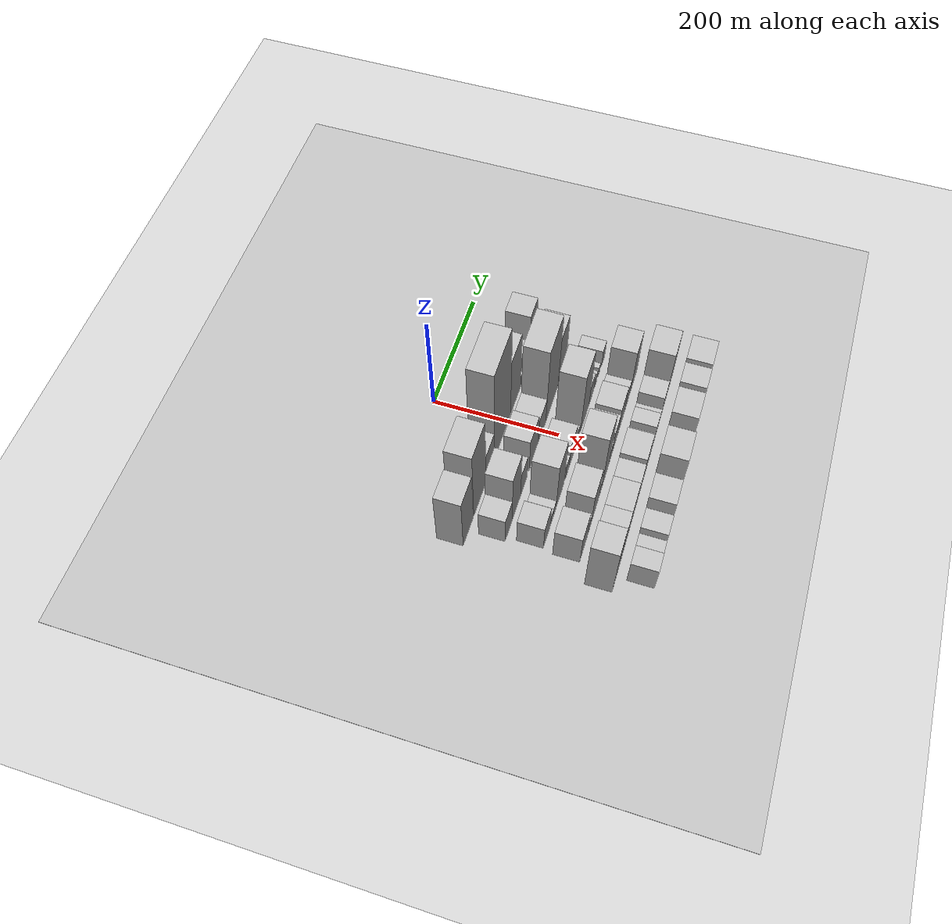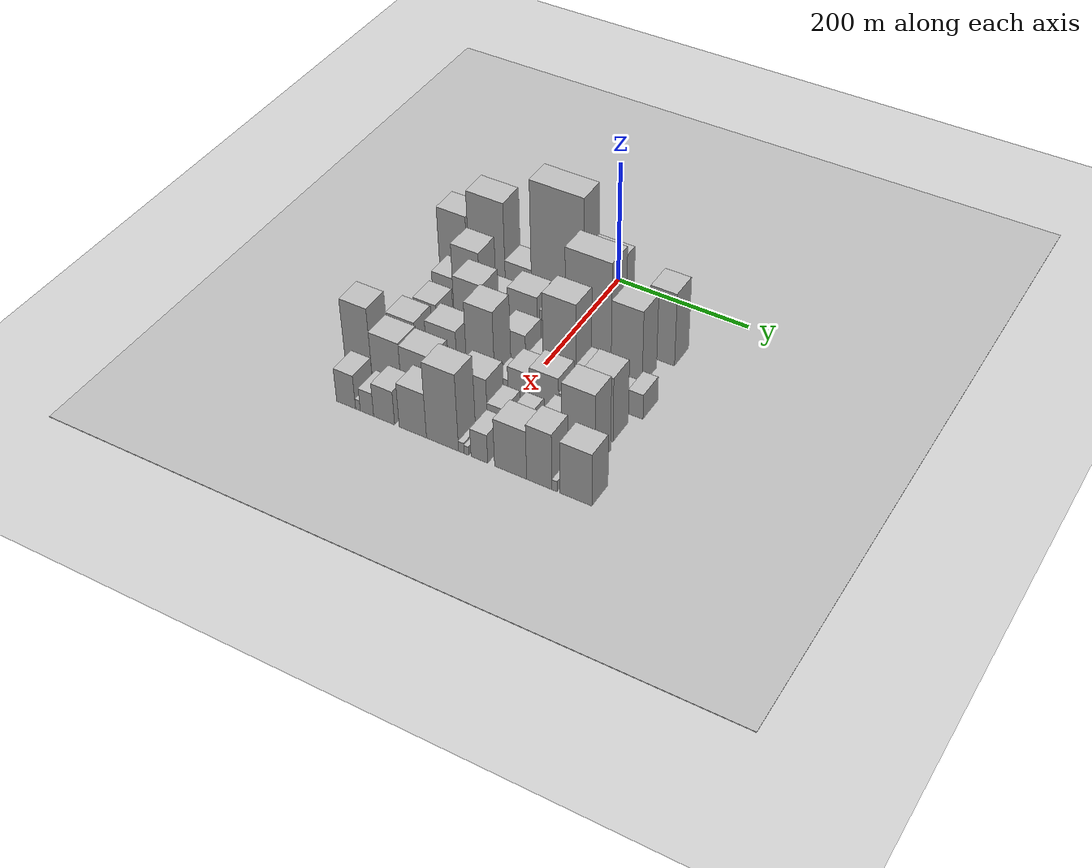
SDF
<sdf version="1.6">
 <world name="default">
  <include><name>ground_plane_1</name><uri>model://HANNAS_ground_plane</uri></include>
  <include>
   <name>ground_plane_2</name>
   <uri>model://HANNAS_ground_plane</uri>
   <pose>100 0 0  0 0 0</pose>
  </include>
  <model name="building_21">
   <static>1</static>
   <pose>100.0000 -193.4009 0 0.000000 0.000000 0.000000</pose>
   <link name="link">
    <pose>0 0 63.00 0 0 0</pose>
    <collision name="collision"><geometry><box><size>40.0000 45.8282 126.0000</size></box></geometry></collision>
    <visual name="visual">
     <cast_shadows>0</cast_shadows>
     <geometry><box><size>40.0000 45.8282 126.0000</size></box></geometry>
     <material>
      <script>
       <uri>model://HANNAS_wall/materials/scripts</uri>
       <uri>model://HANNAS_wall/materials/textures</uri>
       <name>vrc/HANNAS_wall</name>
      </script>
     </material>
    </visual>
   </link>
  </model>
  <model name="building_22">
   <static>1</static>
   <pose>100.0000 -138.6971 0 0.000000 0.000000 0.000000</pose>
   <link name="link">
    <pose>0 0 85.50 0 0 0</pose>
    <collision name="collision"><geometry><box><size>40.0000 57.5793 171.0000</size></box></geometry></collision>
    <visual name="visual">
     <cast_shadows>0</cast_shadows>
     <geometry><box><size>40.0000 57.5793 171.0000</size></box></geometry>
     <material>
      <script>
       <uri>model://HANNAS_wall/materials/scripts</uri>
       <uri>model://HANNAS_wall/materials/textures</uri>
       <name>vrc/HANNAS_wall</name>
      </script>
     </material>
    </visual>
   </link>
  </model>
  <model name="building_23">
   <static>1</static>
   <pose>100.0000 -89.1934 0 0.000000 0.000000 0.000000</pose>
   <link name="link">
    <pose>0 0 37.50 0 0 0</pose>
    <collision name="collision"><geometry><box><size>40.0000 41.4282 75.0000</size></box></geometry></collision>
    <visual name="visual">
     <cast_shadows>0</cast_shadows>
     <geometry><box><size>40.0000 41.4282 75.0000</size></box></geometry>
     <material>
      <script>
       <uri>model://HANNAS_wall/materials/scripts</uri>
       <uri>model://HANNAS_wall/materials/textures</uri>
       <name>vrc/HANNAS_wall</name>
      </script>
     </material>
    </visual>
   </link>
  </model>
  <model name="building_24">
   <static>1</static>
   <pose>100.0000 -27.6241 0 0.000000 0.000000 0.000000</pose>
   <link name="link">
    <pose>0 0 112.50 0 0 0</pose>
    <collision name="collision"><geometry><box><size>40.0000 81.7104 225.0000</size></box></geometry></collision>
    <visual name="visual">
     <cast_shadows>0</cast_shadows>
     <geometry><box><size>40.0000 81.7104 225.0000</size></box></geometry>
     <material>
      <script>
       <uri>model://HANNAS_wall/materials/scripts</uri>
       <uri>model://HANNAS_wall/materials/textures</uri>
       <name>vrc/HANNAS_wall</name>
      </script>
     </material>
    </visual>
   </link>
  </model>
  <model name="building_25">
   <static>1</static>
   <pose>100.0000 39.7437 0 0.000000 0.000000 0.000000</pose>
   <link name="link">
    <pose>0 0 70.50 0 0 0</pose>
    <collision name="collision"><geometry><box><size>40.0000 53.0252 141.0000</size></box></geometry></collision>
    <visual name="visual">
     <cast_shadows>0</cast_shadows>
     <geometry><box><size>40.0000 53.0252 141.0000</size></box></geometry>
     <material>
      <script>
       <uri>model://HANNAS_wall/materials/scripts</uri>
       <uri>model://HANNAS_wall/materials/textures</uri>
       <name>vrc/HANNAS_wall</name>
      </script>
     </material>
    </visual>
   </link>
  </model>
  <model name="building_26">
   <static>1</static>
   <pose>100.0000 71.7671 0 0.000000 0.000000 0.000000</pose>
   <link name="link">
    <pose>0 0 13.50 0 0 0</pose>
    <collision name="collision"><geometry><box><size>40.0000 11.0216 27.0000</size></box></geometry></collision>
    <visual name="visual">
     <cast_shadows>0</cast_shadows>
     <geometry><box><size>40.0000 11.0216 27.0000</size></box></geometry>
     <material>
      <script>
       <uri>model://HANNAS_wall/materials/scripts</uri>
       <uri>model://HANNAS_wall/materials/textures</uri>
       <name>vrc/HANNAS_wall</name>
      </script>
     </material>
    </visual>
   </link>
  </model>
  <model name="building_27">
   <static>1</static>
   <pose>100.0000 94.3355 0 0.000000 0.000000 0.000000</pose>
   <link name="link">
    <pose>0 0 31.50 0 0 0</pose>
    <collision name="collision"><geometry><box><size>40.0000 34.1152 63.0000</size></box></geometry></collision>
    <visual name="visual">
     <cast_shadows>0</cast_shadows>
     <geometry><box><size>40.0000 34.1152 63.0000</size></box></geometry>
     <material>
      <script>
       <uri>model://HANNAS_wall/materials/scripts</uri>
       <uri>model://HANNAS_wall/materials/textures</uri>
       <name>vrc/HANNAS_wall</name>
      </script>
     </material>
    </visual>
   </link>
  </model>
  <model name="building_28">
   <static>1</static>
   <pose>100.0000 130.4107 0 0.000000 0.000000 0.000000</pose>
   <link name="link">
    <pose>0 0 61.50 0 0 0</pose>
    <collision name="collision"><geometry><box><size>40.0000 38.0351 123.0000</size></box></geometry></collision>
    <visual name="visual">
     <cast_shadows>0</cast_shadows>
     <geometry><box><size>40.0000 38.0351 123.0000</size></box></geometry>
     <material>
      <script>
       <uri>model://HANNAS_wall/materials/scripts</uri>
       <uri>model://HANNAS_wall/materials/textures</uri>
       <name>vrc/HANNAS_wall</name>
      </script>
     </material>
    </visual>
   </link>
  </model>
  <model name="building_68">
   <static>1</static>
   <pose>155.0000 -175.2073 0 0.000000 0.000000 0.000000</pose>
   <link name="link">
    <pose>0 0 31.50 0 0 0</pose>
    <collision name="collision"><geometry><box><size>40.0000 33.4507 63.0000</size></box></geometry></collision>
    <visual name="visual">
     <cast_shadows>0</cast_shadows>
     <geometry><box><size>40.0000 33.4507 63.0000</size></box></geometry>
     <material>
      <script>
       <uri>model://HANNAS_wall/materials/scripts</uri>
       <uri>model://HANNAS_wall/materials/textures</uri>
       <name>vrc/HANNAS_wall</name>
      </script>
     </material>
    </visual>
   </link>
  </model>
  <model name="building_69">
   <static>1</static>
   <pose>155.0000 -137.0942 0 0.000000 0.000000 0.000000</pose>
   <link name="link">
    <pose>0 0 61.50 0 0 0</pose>
    <collision name="collision"><geometry><box><size>40.0000 42.7755 123.0000</size></box></geometry></collision>
    <visual name="visual">
     <cast_shadows>0</cast_shadows>
     <geometry><box><size>40.0000 42.7755 123.0000</size></box></geometry>
     <material>
      <script>
       <uri>model://HANNAS_wall/materials/scripts</uri>
       <uri>model://HANNAS_wall/materials/textures</uri>
       <name>vrc/HANNAS_wall</name>
      </script>
     </material>
    </visual>
   </link>
  </model>
  <model name="building_70">
   <static>1</static>
   <pose>155.0000 -98.9325 0 0.000000 0.000000 0.000000</pose>
   <link name="link">
    <pose>0 0 30.00 0 0 0</pose>
    <collision name="collision"><geometry><box><size>40.0000 33.5480 60.0000</size></box></geometry></collision>
    <visual name="visual">
     <cast_shadows>0</cast_shadows>
     <geometry><box><size>40.0000 33.5480 60.0000</size></box></geometry>
     <material>
      <script>
       <uri>model://HANNAS_wall/materials/scripts</uri>
       <uri>model://HANNAS_wall/materials/textures</uri>
       <name>vrc/HANNAS_wall</name>
      </script>
     </material>
    </visual>
   </link>
  </model>
  <model name="building_71">
   <static>1</static>
   <pose>155.0000 -49.6182 0 0.000000 0.000000 0.000000</pose>
   <link name="link">
    <pose>0 0 42.00 0 0 0</pose>
    <collision name="collision"><geometry><box><size>40.0000 45.0807 84.0000</size></box></geometry></collision>
    <visual name="visual">
     <cast_shadows>0</cast_shadows>
     <geometry><box><size>40.0000 45.0807 84.0000</size></box></geometry>
     <material>
      <script>
       <uri>model://HANNAS_wall/materials/scripts</uri>
       <uri>model://HANNAS_wall/materials/textures</uri>
       <name>vrc/HANNAS_wall</name>
      </script>
     </material>
    </visual>
   </link>
  </model>
  <model name="building_72">
   <static>1</static>
   <pose>155.0000 -3.4478 0 0.000000 0.000000 0.000000</pose>
   <link name="link">
    <pose>0 0 33.00 0 0 0</pose>
    <collision name="collision"><geometry><box><size>40.0000 39.2601 66.0000</size></box></geometry></collision>
    <visual name="visual">
     <cast_shadows>0</cast_shadows>
     <geometry><box><size>40.0000 39.2601 66.0000</size></box></geometry>
     <material>
      <script>
       <uri>model://HANNAS_wall/materials/scripts</uri>
       <uri>model://HANNAS_wall/materials/textures</uri>
       <name>vrc/HANNAS_wall</name>
      </script>
     </material>
    </visual>
   </link>
  </model>
  <model name="building_73">
   <static>1</static>
   <pose>155.0000 50.3227 0 0.000000 0.000000 0.000000</pose>
   <link name="link">
    <pose>0 0 93.00 0 0 0</pose>
    <collision name="collision"><geometry><box><size>40.0000 68.2807 186.0000</size></box></geometry></collision>
    <visual name="visual">
     <cast_shadows>0</cast_shadows>
     <geometry><box><size>40.0000 68.2807 186.0000</size></box></geometry>
     <material>
      <script>
       <uri>model://HANNAS_wall/materials/scripts</uri>
       <uri>model://HANNAS_wall/materials/textures</uri>
       <name>vrc/HANNAS_wall</name>
      </script>
     </material>
    </visual>
   </link>
  </model>
  <model name="building_74">
   <static>1</static>
   <pose>155.0000 107.5463 0 0.000000 0.000000 0.000000</pose>
   <link name="link">
    <pose>0 0 63.00 0 0 0</pose>
    <collision name="collision"><geometry><box><size>40.0000 46.1665 126.0000</size></box></geometry></collision>
    <visual name="visual">
     <cast_shadows>0</cast_shadows>
     <geometry><box><size>40.0000 46.1665 126.0000</size></box></geometry>
     <material>
      <script>
       <uri>model://HANNAS_wall/materials/scripts</uri>
       <uri>model://HANNAS_wall/materials/textures</uri>
       <name>vrc/HANNAS_wall</name>
      </script>
     </material>
    </visual>
   </link>
  </model>
  <model name="building_113">
   <static>1</static>
   <pose>210.0000 -167.9062 0 0.000000 0.000000 0.000000</pose>
   <link name="link">
    <pose>0 0 30.00 0 0 0</pose>
    <collision name="collision"><geometry><box><size>40.0000 35.2449 60.0000</size></box></geometry></collision>
    <visual name="visual">
     <cast_shadows>0</cast_shadows>
     <geometry><box><size>40.0000 35.2449 60.0000</size></box></geometry>
     <material>
      <script>
       <uri>model://HANNAS_wall/materials/scripts</uri>
       <uri>model://HANNAS_wall/materials/textures</uri>
       <name>vrc/HANNAS_wall</name>
      </script>
     </material>
    </visual>
   </link>
  </model>
  <model name="building_114">
   <static>1</static>
   <pose>210.0000 -140.5867 0 0.000000 0.000000 0.000000</pose>
   <link name="link">
    <pose>0 0 13.50 0 0 0</pose>
    <collision name="collision"><geometry><box><size>40.0000 13.3941 27.0000</size></box></geometry></collision>
    <visual name="visual">
     <cast_shadows>0</cast_shadows>
     <geometry><box><size>40.0000 13.3941 27.0000</size></box></geometry>
     <material>
      <script>
       <uri>model://HANNAS_wall/materials/scripts</uri>
       <uri>model://HANNAS_wall/materials/textures</uri>
       <name>vrc/HANNAS_wall</name>
      </script>
     </material>
    </visual>
   </link>
  </model>
  <model name="building_115">
   <static>1</static>
   <pose>210.0000 -127.2770 0 0.000000 0.000000 0.000000</pose>
   <link name="link">
    <pose>0 0 13.50 0 0 0</pose>
    <collision name="collision"><geometry><box><size>40.0000 13.2253 27.0000</size></box></geometry></collision>
    <visual name="visual">
     <cast_shadows>0</cast_shadows>
     <geometry><box><size>40.0000 13.2253 27.0000</size></box></geometry>
     <material>
      <script>
       <uri>model://HANNAS_wall/materials/scripts</uri>
       <uri>model://HANNAS_wall/materials/textures</uri>
       <name>vrc/HANNAS_wall</name>
      </script>
     </material>
    </visual>
   </link>
  </model>
  <model name="building_116">
   <static>1</static>
   <pose>210.0000 -98.5784 0 0.000000 0.000000 0.000000</pose>
   <link name="link">
    <pose>0 0 61.50 0 0 0</pose>
    <collision name="collision"><geometry><box><size>40.0000 44.1719 123.0000</size></box></geometry></collision>
    <visual name="visual">
     <cast_shadows>0</cast_shadows>
     <geometry><box><size>40.0000 44.1719 123.0000</size></box></geometry>
     <material>
      <script>
       <uri>model://HANNAS_wall/materials/scripts</uri>
       <uri>model://HANNAS_wall/materials/textures</uri>
       <name>vrc/HANNAS_wall</name>
      </script>
     </material>
    </visual>
   </link>
  </model>
  <model name="building_117">
   <static>1</static>
   <pose>210.0000 -59.5759 0 0.000000 0.000000 0.000000</pose>
   <link name="link">
    <pose>0 0 19.50 0 0 0</pose>
    <collision name="collision"><geometry><box><size>40.0000 19.8329 39.0000</size></box></geometry></collision>
    <visual name="visual">
     <cast_shadows>0</cast_shadows>
     <geometry><box><size>40.0000 19.8329 39.0000</size></box></geometry>
     <material>
      <script>
       <uri>model://HANNAS_wall/materials/scripts</uri>
       <uri>model://HANNAS_wall/materials/textures</uri>
       <name>vrc/HANNAS_wall</name>
      </script>
     </material>
    </visual>
   </link>
  </model>
  <model name="building_118">
   <static>1</static>
   <pose>210.0000 -30.9069 0 0.000000 0.000000 0.000000</pose>
   <link name="link">
    <pose>0 0 33.00 0 0 0</pose>
    <collision name="collision"><geometry><box><size>40.0000 37.5051 66.0000</size></box></geometry></collision>
    <visual name="visual">
     <cast_shadows>0</cast_shadows>
     <geometry><box><size>40.0000 37.5051 66.0000</size></box></geometry>
     <material>
      <script>
       <uri>model://HANNAS_wall/materials/scripts</uri>
       <uri>model://HANNAS_wall/materials/textures</uri>
       <name>vrc/HANNAS_wall</name>
      </script>
     </material>
    </visual>
   </link>
  </model>
  <model name="building_119">
   <static>1</static>
   <pose>210.0000 -2.4551 0 0.000000 0.000000 0.000000</pose>
   <link name="link">
    <pose>0 0 16.50 0 0 0</pose>
    <collision name="collision"><geometry><box><size>40.0000 19.3985 33.0000</size></box></geometry></collision>
    <visual name="visual">
     <cast_shadows>0</cast_shadows>
     <geometry><box><size>40.0000 19.3985 33.0000</size></box></geometry>
     <material>
      <script>
       <uri>model://HANNAS_wall/materials/scripts</uri>
       <uri>model://HANNAS_wall/materials/textures</uri>
       <name>vrc/HANNAS_wall</name>
      </script>
     </material>
    </visual>
   </link>
  </model>
  <model name="building_120">
   <static>1</static>
   <pose>210.0000 39.0211 0 0.000000 0.000000 0.000000</pose>
   <link name="link">
    <pose>0 0 75.00 0 0 0</pose>
    <collision name="collision"><geometry><box><size>40.0000 49.5538 150.0000</size></box></geometry></collision>
    <visual name="visual">
     <cast_shadows>0</cast_shadows>
     <geometry><box><size>40.0000 49.5538 150.0000</size></box></geometry>
     <material>
      <script>
       <uri>model://HANNAS_wall/materials/scripts</uri>
       <uri>model://HANNAS_wall/materials/textures</uri>
       <name>vrc/HANNAS_wall</name>
      </script>
     </material>
    </visual>
   </link>
  </model>
  <model name="building_121">
   <static>1</static>
   <pose>210.0000 77.6585 0 0.000000 0.000000 0.000000</pose>
   <link name="link">
    <pose>0 0 25.50 0 0 0</pose>
    <collision name="collision"><geometry><box><size>40.0000 27.7210 51.0000</size></box></geometry></collision>
    <visual name="visual">
     <cast_shadows>0</cast_shadows>
     <geometry><box><size>40.0000 27.7210 51.0000</size></box></geometry>
     <material>
      <script>
       <uri>model://HANNAS_wall/materials/scripts</uri>
       <uri>model://HANNAS_wall/materials/textures</uri>
       <name>vrc/HANNAS_wall</name>
      </script>
     </material>
    </visual>
   </link>
  </model>
  <model name="building_122">
   <static>1</static>
   <pose>210.0000 104.0244 0 0.000000 0.000000 0.000000</pose>
   <link name="link">
    <pose>0 0 15.00 0 0 0</pose>
    <collision name="collision"><geometry><box><size>40.0000 15.0108 30.0000</size></box></geometry></collision>
    <visual name="visual">
     <cast_shadows>0</cast_shadows>
     <geometry><box><size>40.0000 15.0108 30.0000</size></box></geometry>
     <material>
      <script>
       <uri>model://HANNAS_wall/materials/scripts</uri>
       <uri>model://HANNAS_wall/materials/textures</uri>
       <name>vrc/HANNAS_wall</name>
      </script>
     </material>
    </visual>
   </link>
  </model>
  <model name="building_123">
   <static>1</static>
   <pose>210.0000 125.6862 0 0.000000 0.000000 0.000000</pose>
   <link name="link">
    <pose>0 0 12.00 0 0 0</pose>
    <collision name="collision"><geometry><box><size>40.0000 10.3127 24.0000</size></box></geometry></collision>
    <visual name="visual">
     <cast_shadows>0</cast_shadows>
     <geometry><box><size>40.0000 10.3127 24.0000</size></box></geometry>
     <material>
      <script>
       <uri>model://HANNAS_wall/materials/scripts</uri>
       <uri>model://HANNAS_wall/materials/textures</uri>
       <name>vrc/HANNAS_wall</name>
      </script>
     </material>
    </visual>
   </link>
  </model>
  <model name="building_124">
   <static>1</static>
   <pose>210.0000 150.6932 0 0.000000 0.000000 0.000000</pose>
   <link name="link">
    <pose>0 0 21.00 0 0 0</pose>
    <collision name="collision"><geometry><box><size>40.0000 21.7013 42.0000</size></box></geometry></collision>
    <visual name="visual">
     <cast_shadows>0</cast_shadows>
     <geometry><box><size>40.0000 21.7013 42.0000</size></box></geometry>
     <material>
      <script>
       <uri>model://HANNAS_wall/materials/scripts</uri>
       <uri>model://HANNAS_wall/materials/textures</uri>
       <name>vrc/HANNAS_wall</name>
      </script>
     </material>
    </visual>
   </link>
  </model>
  <model name="building_163">
   <static>1</static>
   <pose>265.0000 -169.0594 0 0.000000 0.000000 0.000000</pose>
   <link name="link">
    <pose>0 0 36.00 0 0 0</pose>
    <collision name="collision"><geometry><box><size>40.0000 43.1188 72.0000</size></box></geometry></collision>
    <visual name="visual">
     <cast_shadows>0</cast_shadows>
     <geometry><box><size>40.0000 43.1188 72.0000</size></box></geometry>
     <material>
      <script>
       <uri>model://HANNAS_wall/materials/scripts</uri>
       <uri>model://HANNAS_wall/materials/textures</uri>
       <name>vrc/HANNAS_wall</name>
      </script>
     </material>
    </visual>
   </link>
  </model>
  <model name="building_164">
   <static>1</static>
   <pose>265.0000 -138.6589 0 0.000000 0.000000 0.000000</pose>
   <link name="link">
    <pose>0 0 16.50 0 0 0</pose>
    <collision name="collision"><geometry><box><size>40.0000 17.6820 33.0000</size></box></geometry></collision>
    <visual name="visual">
     <cast_shadows>0</cast_shadows>
     <geometry><box><size>40.0000 17.6820 33.0000</size></box></geometry>
     <material>
      <script>
       <uri>model://HANNAS_wall/materials/scripts</uri>
       <uri>model://HANNAS_wall/materials/textures</uri>
       <name>vrc/HANNAS_wall</name>
      </script>
     </material>
    </visual>
   </link>
  </model>
  <model name="building_165">
   <static>1</static>
   <pose>265.0000 -106.3314 0 0.000000 0.000000 0.000000</pose>
   <link name="link">
    <pose>0 0 42.00 0 0 0</pose>
    <collision name="collision"><geometry><box><size>40.0000 46.9731 84.0000</size></box></geometry></collision>
    <visual name="visual">
     <cast_shadows>0</cast_shadows>
     <geometry><box><size>40.0000 46.9731 84.0000</size></box></geometry>
     <material>
      <script>
       <uri>model://HANNAS_wall/materials/scripts</uri>
       <uri>model://HANNAS_wall/materials/textures</uri>
       <name>vrc/HANNAS_wall</name>
      </script>
     </material>
    </visual>
   </link>
  </model>
  <model name="building_166">
   <static>1</static>
   <pose>265.0000 -75.3328 0 0.000000 0.000000 0.000000</pose>
   <link name="link">
    <pose>0 0 15.00 0 0 0</pose>
    <collision name="collision"><geometry><box><size>40.0000 15.0241 30.0000</size></box></geometry></collision>
    <visual name="visual">
     <cast_shadows>0</cast_shadows>
     <geometry><box><size>40.0000 15.0241 30.0000</size></box></geometry>
     <material>
      <script>
       <uri>model://HANNAS_wall/materials/scripts</uri>
       <uri>model://HANNAS_wall/materials/textures</uri>
       <name>vrc/HANNAS_wall</name>
      </script>
     </material>
    </visual>
   </link>
  </model>
  <model name="building_167">
   <static>1</static>
   <pose>265.0000 -46.6326 0 0.000000 0.000000 0.000000</pose>
   <link name="link">
    <pose>0 0 70.50 0 0 0</pose>
    <collision name="collision"><geometry><box><size>40.0000 42.3764 141.0000</size></box></geometry></collision>
    <visual name="visual">
     <cast_shadows>0</cast_shadows>
     <geometry><box><size>40.0000 42.3764 141.0000</size></box></geometry>
     <material>
      <script>
       <uri>model://HANNAS_wall/materials/scripts</uri>
       <uri>model://HANNAS_wall/materials/textures</uri>
       <name>vrc/HANNAS_wall</name>
      </script>
     </material>
    </visual>
   </link>
  </model>
  <model name="building_168">
   <static>1</static>
   <pose>265.0000 -15.5614 0 0.000000 0.000000 0.000000</pose>
   <link name="link">
    <pose>0 0 18.00 0 0 0</pose>
    <collision name="collision"><geometry><box><size>40.0000 19.7659 36.0000</size></box></geometry></collision>
    <visual name="visual">
     <cast_shadows>0</cast_shadows>
     <geometry><box><size>40.0000 19.7659 36.0000</size></box></geometry>
     <material>
      <script>
       <uri>model://HANNAS_wall/materials/scripts</uri>
       <uri>model://HANNAS_wall/materials/textures</uri>
       <name>vrc/HANNAS_wall</name>
      </script>
     </material>
    </visual>
   </link>
  </model>
  <model name="building_169">
   <static>1</static>
   <pose>265.0000 10.6715 0 0.000000 0.000000 0.000000</pose>
   <link name="link">
    <pose>0 0 30.00 0 0 0</pose>
    <collision name="collision"><geometry><box><size>40.0000 32.6999 60.0000</size></box></geometry></collision>
    <visual name="visual">
     <cast_shadows>0</cast_shadows>
     <geometry><box><size>40.0000 32.6999 60.0000</size></box></geometry>
     <material>
      <script>
       <uri>model://HANNAS_wall/materials/scripts</uri>
       <uri>model://HANNAS_wall/materials/textures</uri>
       <name>vrc/HANNAS_wall</name>
      </script>
     </material>
    </visual>
   </link>
  </model>
  <model name="building_170">
   <static>1</static>
   <pose>265.0000 48.2981 0 0.000000 0.000000 0.000000</pose>
   <link name="link">
    <pose>0 0 36.00 0 0 0</pose>
    <collision name="collision"><geometry><box><size>40.0000 42.5534 72.0000</size></box></geometry></collision>
    <visual name="visual">
     <cast_shadows>0</cast_shadows>
     <geometry><box><size>40.0000 42.5534 72.0000</size></box></geometry>
     <material>
      <script>
       <uri>model://HANNAS_wall/materials/scripts</uri>
       <uri>model://HANNAS_wall/materials/textures</uri>
       <name>vrc/HANNAS_wall</name>
      </script>
     </material>
    </visual>
   </link>
  </model>
  <model name="building_171">
   <static>1</static>
   <pose>265.0000 83.8950 0 0.000000 0.000000 0.000000</pose>
   <link name="link">
    <pose>0 0 24.00 0 0 0</pose>
    <collision name="collision"><geometry><box><size>40.0000 28.6404 48.0000</size></box></geometry></collision>
    <visual name="visual">
     <cast_shadows>0</cast_shadows>
     <geometry><box><size>40.0000 28.6404 48.0000</size></box></geometry>
     <material>
      <script>
       <uri>model://HANNAS_wall/materials/scripts</uri>
       <uri>model://HANNAS_wall/materials/textures</uri>
       <name>vrc/HANNAS_wall</name>
      </script>
     </material>
    </visual>
   </link>
  </model>
  <model name="building_172">
   <static>1</static>
   <pose>265.0000 127.2475 0 0.000000 0.000000 0.000000</pose>
   <link name="link">
    <pose>0 0 54.00 0 0 0</pose>
    <collision name="collision"><geometry><box><size>40.0000 42.0646 108.0000</size></box></geometry></collision>
    <visual name="visual">
     <cast_shadows>0</cast_shadows>
     <geometry><box><size>40.0000 42.0646 108.0000</size></box></geometry>
     <material>
      <script>
       <uri>model://HANNAS_wall/materials/scripts</uri>
       <uri>model://HANNAS_wall/materials/textures</uri>
       <name>vrc/HANNAS_wall</name>
      </script>
     </material>
    </visual>
   </link>
  </model>
  <model name="building_214">
   <static>1</static>
   <pose>320.0000 -200.1667 0 0.000000 0.000000 0.000000</pose>
   <link name="link">
    <pose>0 0 61.50 0 0 0</pose>
    <collision name="collision"><geometry><box><size>40.0000 41.6765 123.0000</size></box></geometry></collision>
    <visual name="visual">
     <cast_shadows>0</cast_shadows>
     <geometry><box><size>40.0000 41.6765 123.0000</size></box></geometry>
     <material>
      <script>
       <uri>model://HANNAS_wall/materials/scripts</uri>
       <uri>model://HANNAS_wall/materials/textures</uri>
       <name>vrc/HANNAS_wall</name>
      </script>
     </material>
    </visual>
   </link>
  </model>
  <model name="building_215">
   <static>1</static>
   <pose>320.0000 -156.5483 0 0.000000 0.000000 0.000000</pose>
   <link name="link">
    <pose>0 0 42.00 0 0 0</pose>
    <collision name="collision"><geometry><box><size>40.0000 45.5603 84.0000</size></box></geometry></collision>
    <visual name="visual">
     <cast_shadows>0</cast_shadows>
     <geometry><box><size>40.0000 45.5603 84.0000</size></box></geometry>
     <material>
      <script>
       <uri>model://HANNAS_wall/materials/scripts</uri>
       <uri>model://HANNAS_wall/materials/textures</uri>
       <name>vrc/HANNAS_wall</name>
      </script>
     </material>
    </visual>
   </link>
  </model>
  <model name="building_216">
   <static>1</static>
   <pose>320.0000 -109.6741 0 0.000000 0.000000 0.000000</pose>
   <link name="link">
    <pose>0 0 40.50 0 0 0</pose>
    <collision name="collision"><geometry><box><size>40.0000 48.1880 81.0000</size></box></geometry></collision>
    <visual name="visual">
     <cast_shadows>0</cast_shadows>
     <geometry><box><size>40.0000 48.1880 81.0000</size></box></geometry>
     <material>
      <script>
       <uri>model://HANNAS_wall/materials/scripts</uri>
       <uri>model://HANNAS_wall/materials/textures</uri>
       <name>vrc/HANNAS_wall</name>
      </script>
     </material>
    </visual>
   </link>
  </model>
  <model name="building_217">
   <static>1</static>
   <pose>320.0000 -65.0720 0 0.000000 0.000000 0.000000</pose>
   <link name="link">
    <pose>0 0 34.50 0 0 0</pose>
    <collision name="collision"><geometry><box><size>40.0000 35.0163 69.0000</size></box></geometry></collision>
    <visual name="visual">
     <cast_shadows>0</cast_shadows>
     <geometry><box><size>40.0000 35.0163 69.0000</size></box></geometry>
     <material>
      <script>
       <uri>model://HANNAS_wall/materials/scripts</uri>
       <uri>model://HANNAS_wall/materials/textures</uri>
       <name>vrc/HANNAS_wall</name>
      </script>
     </material>
    </visual>
   </link>
  </model>
  <model name="building_218">
   <static>1</static>
   <pose>320.0000 -25.2359 0 0.000000 0.000000 0.000000</pose>
   <link name="link">
    <pose>0 0 40.50 0 0 0</pose>
    <collision name="collision"><geometry><box><size>40.0000 44.6557 81.0000</size></box></geometry></collision>
    <visual name="visual">
     <cast_shadows>0</cast_shadows>
     <geometry><box><size>40.0000 44.6557 81.0000</size></box></geometry>
     <material>
      <script>
       <uri>model://HANNAS_wall/materials/scripts</uri>
       <uri>model://HANNAS_wall/materials/textures</uri>
       <name>vrc/HANNAS_wall</name>
      </script>
     </material>
    </visual>
   </link>
  </model>
  <model name="building_219">
   <static>1</static>
   <pose>320.0000 9.5226 0 0.000000 0.000000 0.000000</pose>
   <link name="link">
    <pose>0 0 21.00 0 0 0</pose>
    <collision name="collision"><geometry><box><size>40.0000 24.8613 42.0000</size></box></geometry></collision>
    <visual name="visual">
     <cast_shadows>0</cast_shadows>
     <geometry><box><size>40.0000 24.8613 42.0000</size></box></geometry>
     <material>
      <script>
       <uri>model://HANNAS_wall/materials/scripts</uri>
       <uri>model://HANNAS_wall/materials/textures</uri>
       <name>vrc/HANNAS_wall</name>
      </script>
     </material>
    </visual>
   </link>
  </model>
  <model name="building_220">
   <static>1</static>
   <pose>320.0000 44.0050 0 0.000000 0.000000 0.000000</pose>
   <link name="link">
    <pose>0 0 22.50 0 0 0</pose>
    <collision name="collision"><geometry><box><size>40.0000 26.1035 45.0000</size></box></geometry></collision>
    <visual name="visual">
     <cast_shadows>0</cast_shadows>
     <geometry><box><size>40.0000 26.1035 45.0000</size></box></geometry>
     <material>
      <script>
       <uri>model://HANNAS_wall/materials/scripts</uri>
       <uri>model://HANNAS_wall/materials/textures</uri>
       <name>vrc/HANNAS_wall</name>
      </script>
     </material>
    </visual>
   </link>
  </model>
  <model name="building_221">
   <static>1</static>
   <pose>320.0000 65.2882 0 0.000000 0.000000 0.000000</pose>
   <link name="link">
    <pose>0 0 15.00 0 0 0</pose>
    <collision name="collision"><geometry><box><size>40.0000 16.4631 30.0000</size></box></geometry></collision>
    <visual name="visual">
     <cast_shadows>0</cast_shadows>
     <geometry><box><size>40.0000 16.4631 30.0000</size></box></geometry>
     <material>
      <script>
       <uri>model://HANNAS_wall/materials/scripts</uri>
       <uri>model://HANNAS_wall/materials/textures</uri>
       <name>vrc/HANNAS_wall</name>
      </script>
     </material>
    </visual>
   </link>
  </model>
  <model name="building_222">
   <static>1</static>
   <pose>320.0000 89.7292 0 0.000000 0.000000 0.000000</pose>
   <link name="link">
    <pose>0 0 30.00 0 0 0</pose>
    <collision name="collision"><geometry><box><size>40.0000 32.4188 60.0000</size></box></geometry></collision>
    <visual name="visual">
     <cast_shadows>0</cast_shadows>
     <geometry><box><size>40.0000 32.4188 60.0000</size></box></geometry>
     <material>
      <script>
       <uri>model://HANNAS_wall/materials/scripts</uri>
       <uri>model://HANNAS_wall/materials/textures</uri>
       <name>vrc/HANNAS_wall</name>
      </script>
     </material>
    </visual>
   </link>
  </model>
  <model name="building_223">
   <static>1</static>
   <pose>320.0000 129.5682 0 0.000000 0.000000 0.000000</pose>
   <link name="link">
    <pose>0 0 63.00 0 0 0</pose>
    <collision name="collision"><geometry><box><size>40.0000 47.2594 126.0000</size></box></geometry></collision>
    <visual name="visual">
     <cast_shadows>0</cast_shadows>
     <geometry><box><size>40.0000 47.2594 126.0000</size></box></geometry>
     <material>
      <script>
       <uri>model://HANNAS_wall/materials/scripts</uri>
       <uri>model://HANNAS_wall/materials/textures</uri>
       <name>vrc/HANNAS_wall</name>
      </script>
     </material>
    </visual>
   </link>
  </model>
  <model name="building_268">
   <static>1</static>
   <pose>375.0000 -182.7581 0 0.000000 0.000000 0.000000</pose>
   <link name="link">
    <pose>0 0 28.50 0 0 0</pose>
    <collision name="collision"><geometry><box><size>40.0000 29.5855 57.0000</size></box></geometry></collision>
    <visual name="visual">
     <cast_shadows>0</cast_shadows>
     <geometry><box><size>40.0000 29.5855 57.0000</size></box></geometry>
     <material>
      <script>
       <uri>model://HANNAS_wall/materials/scripts</uri>
       <uri>model://HANNAS_wall/materials/textures</uri>
       <name>vrc/HANNAS_wall</name>
      </script>
     </material>
    </visual>
   </link>
  </model>
  <model name="building_269">
   <static>1</static>
   <pose>375.0000 -164.3474 0 0.000000 0.000000 0.000000</pose>
   <link name="link">
    <pose>0 0 9.00 0 0 0</pose>
    <collision name="collision"><geometry><box><size>40.0000 7.2359 18.0000</size></box></geometry></collision>
    <visual name="visual">
     <cast_shadows>0</cast_shadows>
     <geometry><box><size>40.0000 7.2359 18.0000</size></box></geometry>
     <material>
      <script>
       <uri>model://HANNAS_wall/materials/scripts</uri>
       <uri>model://HANNAS_wall/materials/textures</uri>
       <name>vrc/HANNAS_wall</name>
      </script>
     </material>
    </visual>
   </link>
  </model>
  <model name="building_270">
   <static>1</static>
   <pose>375.0000 -150.3918 0 0.000000 0.000000 0.000000</pose>
   <link name="link">
    <pose>0 0 19.50 0 0 0</pose>
    <collision name="collision"><geometry><box><size>40.0000 20.6752 39.0000</size></box></geometry></collision>
    <visual name="visual">
     <cast_shadows>0</cast_shadows>
     <geometry><box><size>40.0000 20.6752 39.0000</size></box></geometry>
     <material>
      <script>
       <uri>model://HANNAS_wall/materials/scripts</uri>
       <uri>model://HANNAS_wall/materials/textures</uri>
       <name>vrc/HANNAS_wall</name>
      </script>
     </material>
    </visual>
   </link>
  </model>
  <model name="building_271">
   <static>1</static>
   <pose>375.0000 -123.9005 0 0.000000 0.000000 0.000000</pose>
   <link name="link">
    <pose>0 0 28.50 0 0 0</pose>
    <collision name="collision"><geometry><box><size>40.0000 32.3074 57.0000</size></box></geometry></collision>
    <visual name="visual">
     <cast_shadows>0</cast_shadows>
     <geometry><box><size>40.0000 32.3074 57.0000</size></box></geometry>
     <material>
      <script>
       <uri>model://HANNAS_wall/materials/scripts</uri>
       <uri>model://HANNAS_wall/materials/textures</uri>
       <name>vrc/HANNAS_wall</name>
      </script>
     </material>
    </visual>
   </link>
  </model>
  <model name="building_272">
   <static>1</static>
   <pose>375.0000 -80.1382 0 0.000000 0.000000 0.000000</pose>
   <link name="link">
    <pose>0 0 37.50 0 0 0</pose>
    <collision name="collision"><geometry><box><size>40.0000 41.2172 75.0000</size></box></geometry></collision>
    <visual name="visual">
     <cast_shadows>0</cast_shadows>
     <geometry><box><size>40.0000 41.2172 75.0000</size></box></geometry>
     <material>
      <script>
       <uri>model://HANNAS_wall/materials/scripts</uri>
       <uri>model://HANNAS_wall/materials/textures</uri>
       <name>vrc/HANNAS_wall</name>
      </script>
     </material>
    </visual>
   </link>
  </model>
  <model name="building_273">
   <static>1</static>
   <pose>375.0000 -35.5361 0 0.000000 0.000000 0.000000</pose>
   <link name="link">
    <pose>0 0 64.50 0 0 0</pose>
    <collision name="collision"><geometry><box><size>40.0000 47.9870 129.0000</size></box></geometry></collision>
    <visual name="visual">
     <cast_shadows>0</cast_shadows>
     <geometry><box><size>40.0000 47.9870 129.0000</size></box></geometry>
     <material>
      <script>
       <uri>model://HANNAS_wall/materials/scripts</uri>
       <uri>model://HANNAS_wall/materials/textures</uri>
       <name>vrc/HANNAS_wall</name>
      </script>
     </material>
    </visual>
   </link>
  </model>
  <model name="building_274">
   <static>1</static>
   <pose>375.0000 -7.3697 0 0.000000 0.000000 0.000000</pose>
   <link name="link">
    <pose>0 0 9.00 0 0 0</pose>
    <collision name="collision"><geometry><box><size>40.0000 8.3458 18.0000</size></box></geometry></collision>
    <visual name="visual">
     <cast_shadows>0</cast_shadows>
     <geometry><box><size>40.0000 8.3458 18.0000</size></box></geometry>
     <material>
      <script>
       <uri>model://HANNAS_wall/materials/scripts</uri>
       <uri>model://HANNAS_wall/materials/textures</uri>
       <name>vrc/HANNAS_wall</name>
      </script>
     </material>
    </visual>
   </link>
  </model>
  <model name="building_275">
   <static>1</static>
   <pose>375.0000 0.2536 0 0.000000 0.000000 0.000000</pose>
   <link name="link">
    <pose>0 0 7.50 0 0 0</pose>
    <collision name="collision"><geometry><box><size>40.0000 6.9008 15.0000</size></box></geometry></collision>
    <visual name="visual">
     <cast_shadows>0</cast_shadows>
     <geometry><box><size>40.0000 6.9008 15.0000</size></box></geometry>
     <material>
      <script>
       <uri>model://HANNAS_wall/materials/scripts</uri>
       <uri>model://HANNAS_wall/materials/textures</uri>
       <name>vrc/HANNAS_wall</name>
      </script>
     </material>
    </visual>
   </link>
  </model>
  <model name="building_276">
   <static>1</static>
   <pose>375.0000 18.9847 0 0.000000 0.000000 0.000000</pose>
   <link name="link">
    <pose>0 0 24.00 0 0 0</pose>
    <collision name="collision"><geometry><box><size>40.0000 24.5614 48.0000</size></box></geometry></collision>
    <visual name="visual">
     <cast_shadows>0</cast_shadows>
     <geometry><box><size>40.0000 24.5614 48.0000</size></box></geometry>
     <material>
      <script>
       <uri>model://HANNAS_wall/materials/scripts</uri>
       <uri>model://HANNAS_wall/materials/textures</uri>
       <name>vrc/HANNAS_wall</name>
      </script>
     </material>
    </visual>
   </link>
  </model>
  <model name="building_277">
   <static>1</static>
   <pose>375.0000 64.4674 0 0.000000 0.000000 0.000000</pose>
   <link name="link">
    <pose>0 0 40.50 0 0 0</pose>
    <collision name="collision"><geometry><box><size>40.0000 46.4041 81.0000</size></box></geometry></collision>
    <visual name="visual">
     <cast_shadows>0</cast_shadows>
     <geometry><box><size>40.0000 46.4041 81.0000</size></box></geometry>
     <material>
      <script>
       <uri>model://HANNAS_wall/materials/scripts</uri>
       <uri>model://HANNAS_wall/materials/textures</uri>
       <name>vrc/HANNAS_wall</name>
      </script>
     </material>
    </visual>
   </link>
  </model>
  <model name="building_278">
   <static>1</static>
   <pose>375.0000 105.7492 0 0.000000 0.000000 0.000000</pose>
   <link name="link">
    <pose>0 0 46.50 0 0 0</pose>
    <collision name="collision"><geometry><box><size>40.0000 36.1596 93.0000</size></box></geometry></collision>
    <visual name="visual">
     <cast_shadows>0</cast_shadows>
     <geometry><box><size>40.0000 36.1596 93.0000</size></box></geometry>
     <material>
      <script>
       <uri>model://HANNAS_wall/materials/scripts</uri>
       <uri>model://HANNAS_wall/materials/textures</uri>
       <name>vrc/HANNAS_wall</name>
      </script>
     </material>
    </visual>
   </link>
  </model>
  <model name="building_279">
   <static>1</static>
   <pose>375.0000 127.5000 0 0.000000 0.000000 0.000000</pose>
   <link name="link">
    <pose>0 0 9.00 0 0 0</pose>
    <collision name="collision"><geometry><box><size>40.0000 7.3419 18.0000</size></box></geometry></collision>
    <visual name="visual">
     <cast_shadows>0</cast_shadows>
     <geometry><box><size>40.0000 7.3419 18.0000</size></box></geometry>
     <material>
      <script>
       <uri>model://HANNAS_wall/materials/scripts</uri>
       <uri>model://HANNAS_wall/materials/textures</uri>
       <name>vrc/HANNAS_wall</name>
      </script>
     </material>
    </visual>
   </link>
  </model>
  <model name="building_280">
   <static>1</static>
   <pose>375.0000 157.5629 0 0.000000 0.000000 0.000000</pose>
   <link name="link">
    <pose>0 0 43.50 0 0 0</pose>
    <collision name="collision"><geometry><box><size>40.0000 44.7840 87.0000</size></box></geometry></collision>
    <visual name="visual">
     <cast_shadows>0</cast_shadows>
     <geometry><box><size>40.0000 44.7840 87.0000</size></box></geometry>
     <material>
      <script>
       <uri>model://HANNAS_wall/materials/scripts</uri>
       <uri>model://HANNAS_wall/materials/textures</uri>
       <name>vrc/HANNAS_wall</name>
      </script>
     </material>
    </visual>
   </link>
  </model>
 </world>
</sdf>
